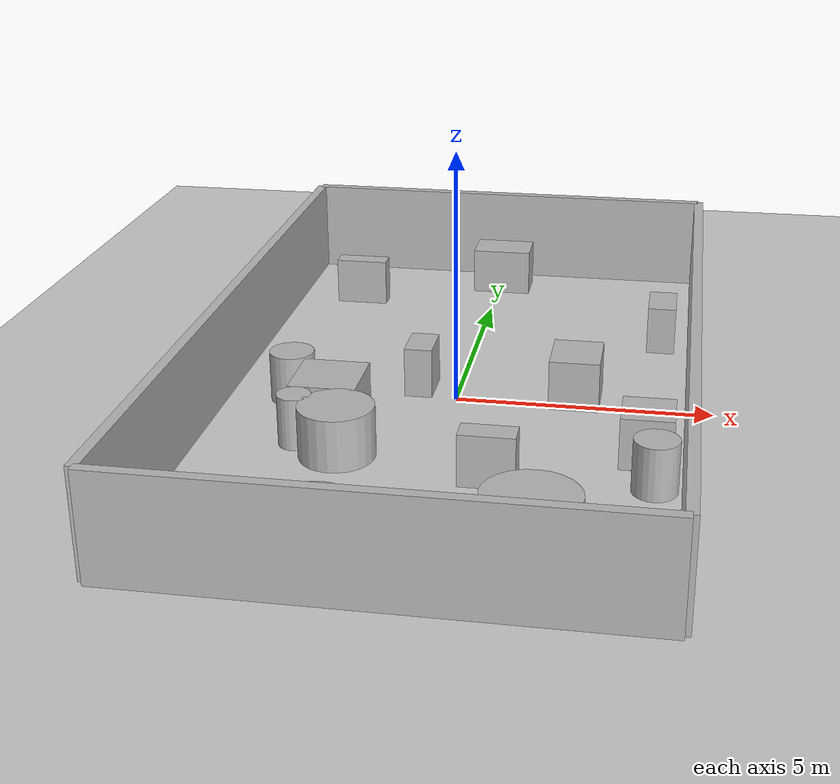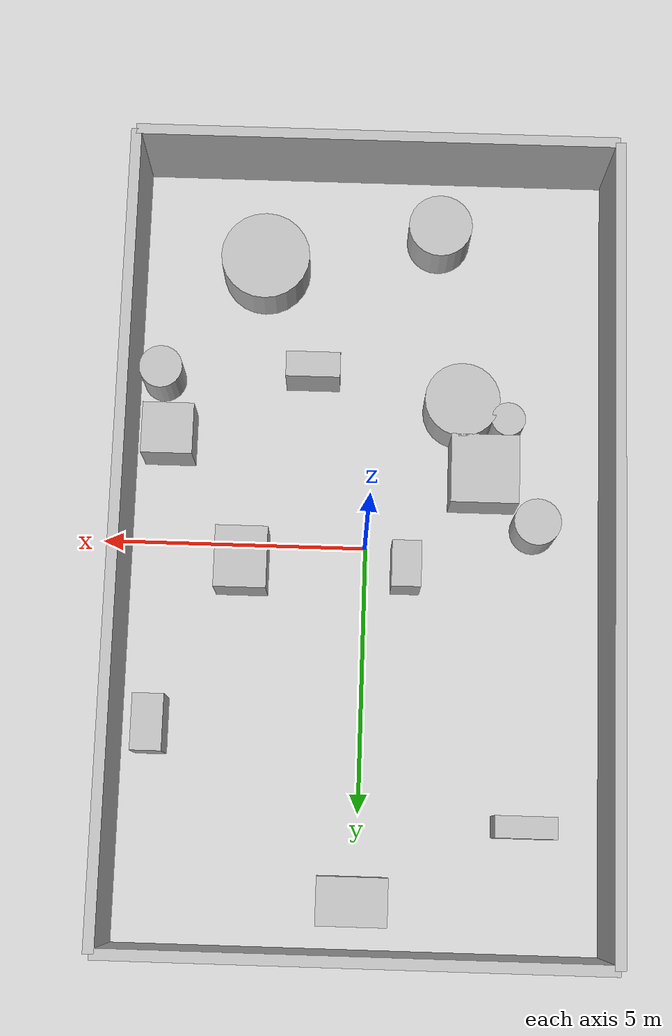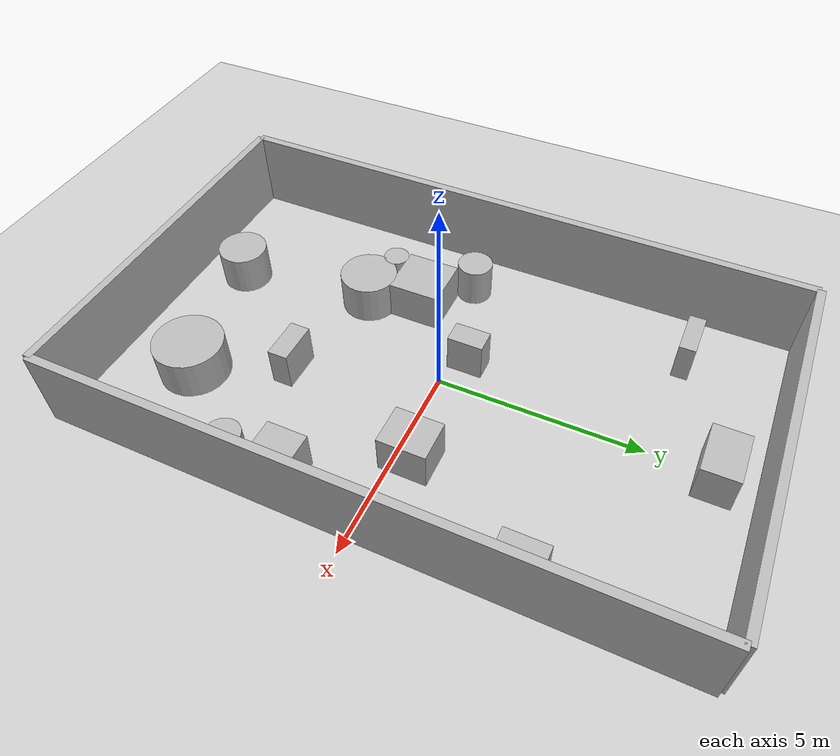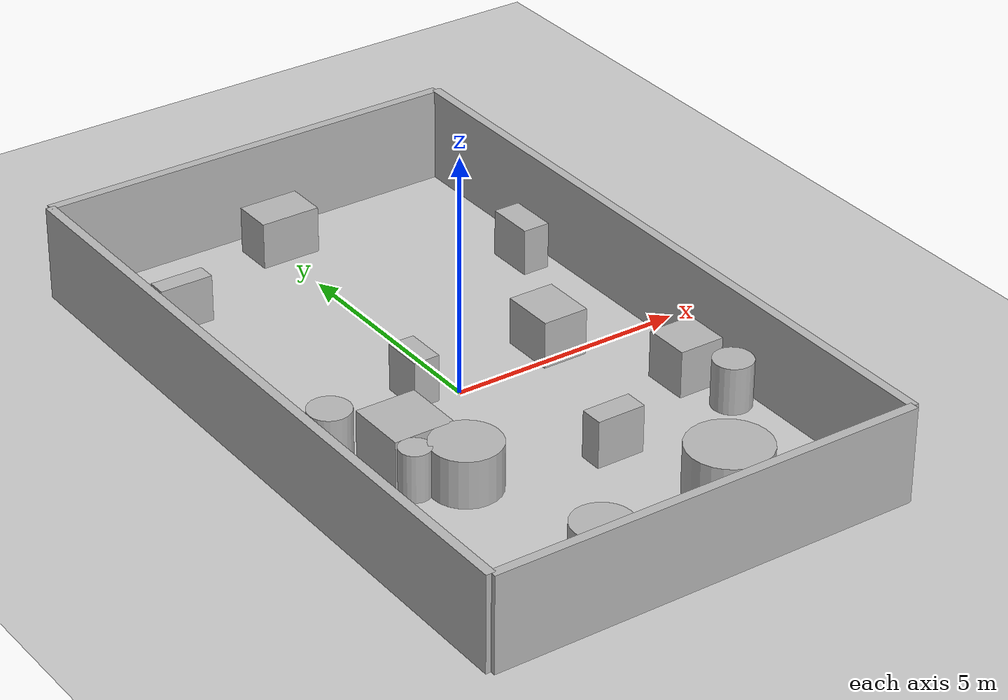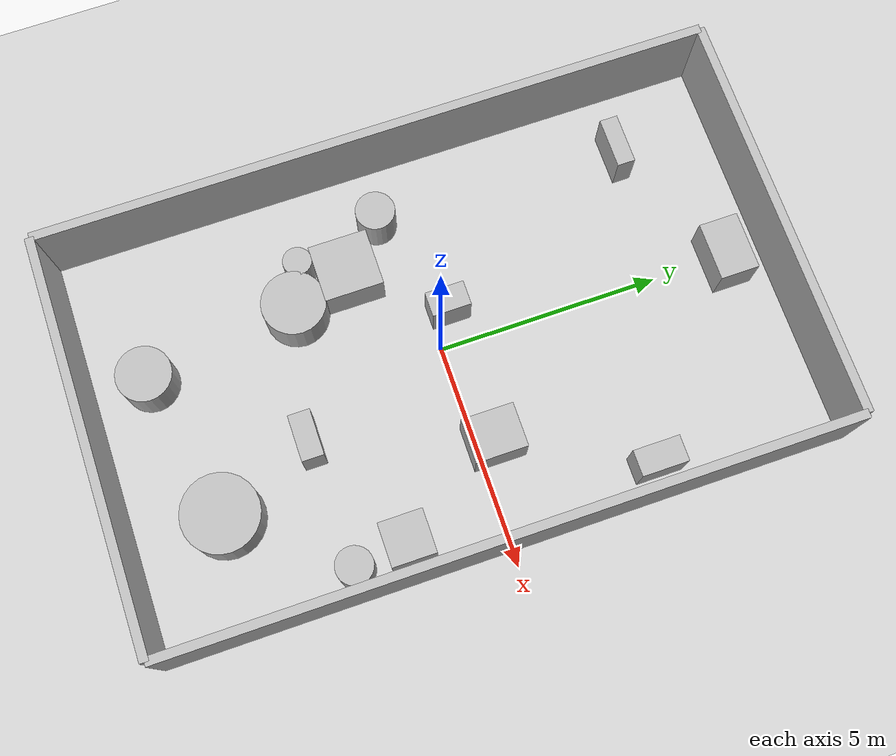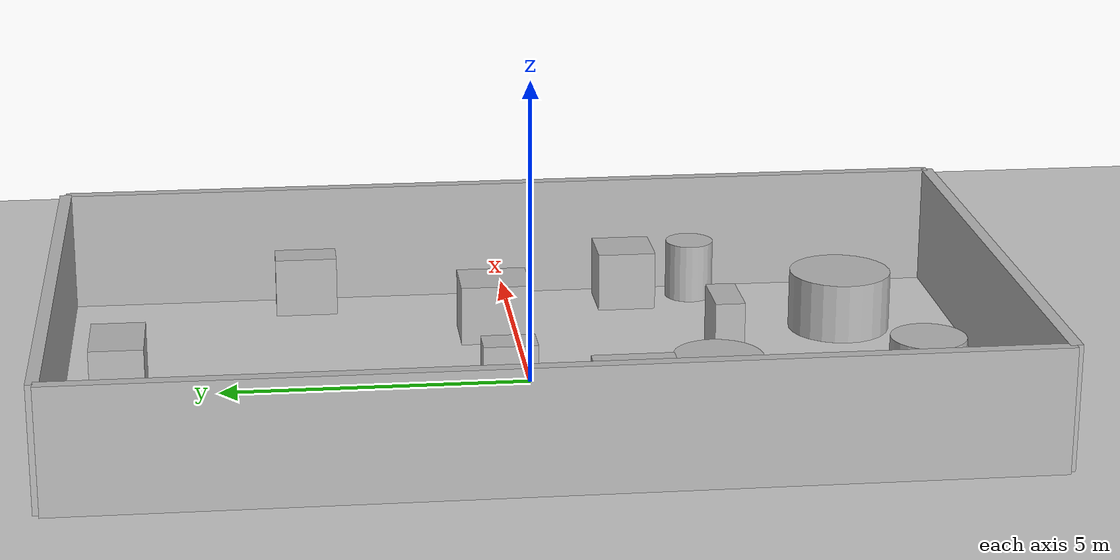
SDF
<?xml version="1.0"?>
<sdf version="1.6">
  <world name="env_50">

    <include><uri>model://ground_plane</uri></include>
    <include><uri>model://sun</uri></include>

    <!-- WALLS -->
    <model name="wall_north"><static>true</static><pose>0 7.551536281777692 1 0 0 0</pose>
      <link name="link"><collision name="collision">
        <geometry><box><size>9.115208353756937 0.2 2</size></box></geometry>
      </collision><visual name="visual">
        <geometry><box><size>9.115208353756937 0.2 2</size></box></geometry>
      </visual></link>
    </model>

    <model name="wall_south"><static>true</static><pose>0 -7.551536281777692 1 0 0 0</pose>
      <link name="link"><collision name="collision">
        <geometry><box><size>9.115208353756937 0.2 2</size></box></geometry>
      </collision><visual name="visual">
        <geometry><box><size>9.115208353756937 0.2 2</size></box></geometry>
      </visual></link>
    </model>

    <model name="wall_east"><static>true</static><pose>4.557604176878469 0 1 0 0 1.57</pose>
      <link name="link"><collision name="collision">
        <geometry><box><size>15.103072563555385 0.2 2</size></box></geometry>
      </collision><visual name="visual">
        <geometry><box><size>15.103072563555385 0.2 2</size></box></geometry>
      </visual></link>
    </model>

    <model name="wall_west"><static>true</static><pose>-4.557604176878469 0 1 0 0 1.57</pose>
      <link name="link"><collision name="collision">
        <geometry><box><size>15.103072563555385 0.2 2</size></box></geometry>
      </collision><visual name="visual">
        <geometry><box><size>15.103072563555385 0.2 2</size></box></geometry>
      </visual></link>
    </model>

    <!-- SENSOR -->

    <model name="lidar_sensor">
      <static>true</static>
      <pose>-2.1015417213297516 -3.98641170837581 0.4 0 0 0</pose>
      <link name="link">
        <sensor name="lidar" type="ray">
          <pose>0 0 0 0 0 0</pose>
          <visualize>true</visualize>
          <always_on>true</always_on>
          <update_rate>10</update_rate>
          <ray>
            <scan><horizontal>
              <samples>240</samples>
              <resolution>1</resolution>
              <min_angle>-3.14159</min_angle>
              <max_angle>3.14159</max_angle>
            </horizontal></scan>
            <range><min>0.15</min><max>20.0</max><resolution>0.01</resolution></range>
          </ray>
          <plugin name="lidar_plugin" filename="liblidar_plugin.so"/>
        </sensor>
      </link>
    </model>

    <!-- OBSTACLES -->

    <model name="obstacle_0">
      <static>true</static>
      <pose>3.981765953838888 -3.2171412401130803 0.5 0 0 0</pose>
      <link name="link">
        <collision name="collision">
          <geometry><cylinder><radius>0.41</radius><length>1.0</length></cylinder></geometry>
        </collision>
        <visual name="visual">
          <geometry><cylinder><radius>0.41</radius><length>1.0</length></cylinder></geometry>
        </visual>
      </link>
    </model>

    <model name="obstacle_1">
      <static>true</static>
      <pose>-2.1942371976756725 -1.4288929953358291 0.5 0 0 0</pose>
      <link name="link">
        <collision name="collision">
          <geometry><box><size>1.28 1.31 1.0</size></box></geometry>
        </collision>
        <visual name="visual">
          <geometry><box><size>1.28 1.31 1.0</size></box></geometry>
        </visual>
      </link>
    </model>

    <model name="obstacle_2">
      <static>true</static>
      <pose>3.8914068999124876 3.488161744506818 0.5 0 0 0</pose>
      <link name="link">
        <collision name="collision">
          <geometry><box><size>0.58 1.04 1.0</size></box></geometry>
        </collision>
        <visual name="visual">
          <geometry><box><size>0.58 1.04 1.0</size></box></geometry>
        </visual>
      </link>
    </model>

    <model name="obstacle_3">
      <static>true</static>
      <pose>2.082285903967427 -5.490762975810279 0.5 0 0 0</pose>
      <link name="link">
        <collision name="collision">
          <geometry><cylinder><radius>0.85</radius><length>1.0</length></cylinder></geometry>
        </collision>
        <visual name="visual">
          <geometry><cylinder><radius>0.85</radius><length>1.0</length></cylinder></geometry>
        </visual>
      </link>
    </model>

    <model name="obstacle_4">
      <static>true</static>
      <pose>0.07295934869245713 6.570647720822696 0.5 0 0 0</pose>
      <link name="link">
        <collision name="collision">
          <geometry><box><size>1.29 0.87 1.0</size></box></geometry>
        </collision>
        <visual name="visual">
          <geometry><box><size>1.29 0.87 1.0</size></box></geometry>
        </visual>
      </link>
    </model>

    <model name="obstacle_5">
      <static>true</static>
      <pose>1.0966008746780922 -3.3530696269006497 0.5 0 0 0</pose>
      <link name="link">
        <collision name="collision">
          <geometry><box><size>1.03 0.49 1.0</size></box></geometry>
        </collision>
        <visual name="visual">
          <geometry><box><size>1.03 0.49 1.0</size></box></geometry>
        </visual>
      </link>
    </model>

    <model name="obstacle_6">
      <static>true</static>
      <pose>-2.61801319155887 -2.3936193069051477 0.5 0 0 0</pose>
      <link name="link">
        <collision name="collision">
          <geometry><cylinder><radius>0.32</radius><length>1.0</length></cylinder></geometry>
        </collision>
        <visual name="visual">
          <geometry><cylinder><radius>0.32</radius><length>1.0</length></cylinder></geometry>
        </visual>
      </link>
    </model>

    <model name="obstacle_7">
      <static>true</static>
      <pose>-3.1869009665046164 -0.43708064198697993 0.5 0 0 0</pose>
      <link name="link">
        <collision name="collision">
          <geometry><cylinder><radius>0.44</radius><length>1.0</length></cylinder></geometry>
        </collision>
        <visual name="visual">
          <geometry><cylinder><radius>0.44</radius><length>1.0</length></cylinder></geometry>
        </visual>
      </link>
    </model>

    <model name="obstacle_8">
      <static>true</static>
      <pose>-1.2663348773603618 -6.198340635185995 0.5 0 0 0</pose>
      <link name="link">
        <collision name="collision">
          <geometry><cylinder><radius>0.61</radius><length>1.0</length></cylinder></geometry>
        </collision>
        <visual name="visual">
          <geometry><cylinder><radius>0.61</radius><length>1.0</length></cylinder></geometry>
        </visual>
      </link>
    </model>

    <model name="obstacle_9">
      <static>true</static>
      <pose>-3.0263261905449834 5.164788516917636 0.5 0 0 0</pose>
      <link name="link">
        <collision name="collision">
          <geometry><box><size>1.13 0.4 1.0</size></box></geometry>
        </collision>
        <visual name="visual">
          <geometry><box><size>1.13 0.4 1.0</size></box></geometry>
        </visual>
      </link>
    </model>

    <model name="obstacle_10">
      <static>true</static>
      <pose>3.7966609611748554 -2.0280290453284087 0.5 0 0 0</pose>
      <link name="link">
        <collision name="collision">
          <geometry><box><size>0.97 0.98 1.0</size></box></geometry>
        </collision>
        <visual name="visual">
          <geometry><box><size>0.97 0.98 1.0</size></box></geometry>
        </visual>
      </link>
    </model>

    <model name="obstacle_11">
      <static>true</static>
      <pose>-0.7648217645741715 0.41712469685208386 0.5 0 0 0</pose>
      <link name="link">
        <collision name="collision">
          <geometry><box><size>0.55 0.87 1.0</size></box></geometry>
        </collision>
        <visual name="visual">
          <geometry><box><size>0.55 0.87 1.0</size></box></geometry>
        </visual>
      </link>
    </model>

    <model name="obstacle_12">
      <static>true</static>
      <pose>2.3171316896177307 0.38272935526267027 0.5 0 0 0</pose>
      <link name="link">
        <collision name="collision">
          <geometry><box><size>0.98 1.16 1.0</size></box></geometry>
        </collision>
        <visual name="visual">
          <geometry><box><size>0.98 1.16 1.0</size></box></geometry>
        </visual>
      </link>
    </model>

    <model name="obstacle_13">
      <static>true</static>
      <pose>-1.7466075077024739 -2.745655678927002 0.5 0 0 0</pose>
      <link name="link">
        <collision name="collision">
          <geometry><cylinder><radius>0.71</radius><length>1.0</length></cylinder></geometry>
        </collision>
        <visual name="visual">
          <geometry><cylinder><radius>0.71</radius><length>1.0</length></cylinder></geometry>
        </visual>
      </link>
    </model>

  </world>
</sdf>
